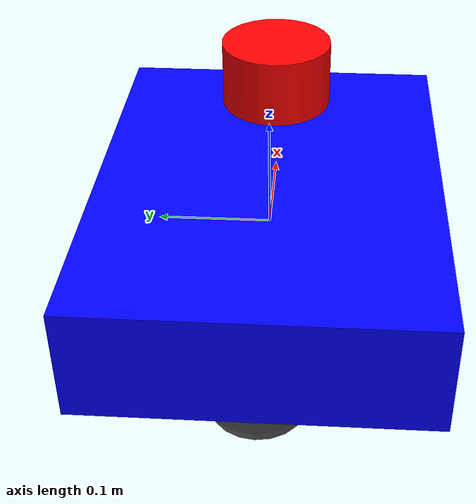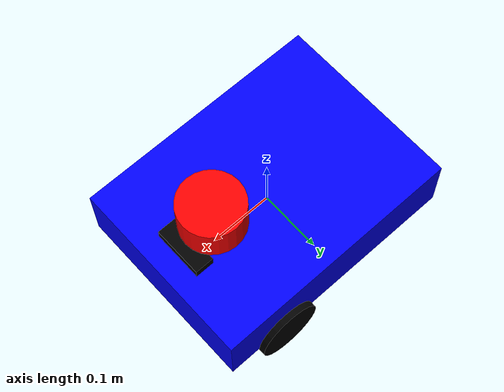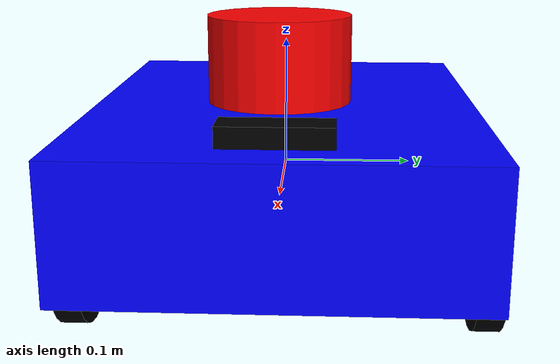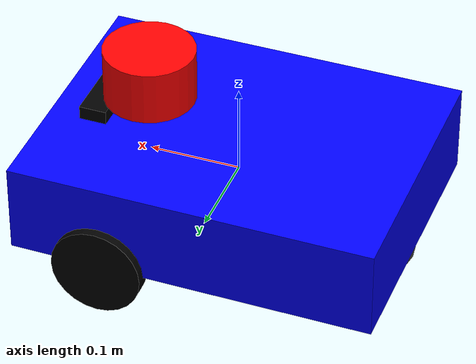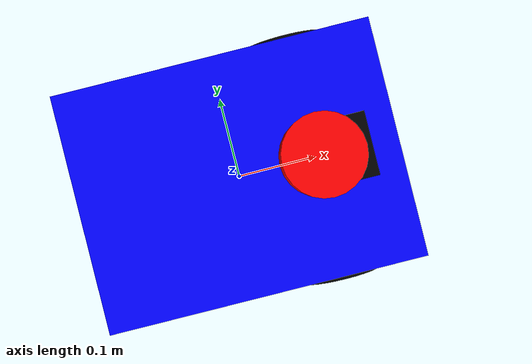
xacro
<?xml version="1.0"?>
<robot xmlns:xacro="http://www.ros.org/wiki/xacro" name="diff_drive_robot">
    <!-- First, we properly declare our arguments -->
    <xacro:arg name="namespace" default="robot1"/>
    <xacro:arg name="x" default="0"/>
    <xacro:arg name="y" default="0"/>
    <xacro:arg name="z" default="0"/>

    <!-- We need to create properties from our arguments to use them in includes -->
    <xacro:property name="robot_namespace" value="$(arg namespace)"/>
    <xacro:property name="robot_x" value="$(arg x)"/>
    <xacro:property name="robot_y" value="$(arg y)"/>
    <xacro:property name="robot_z" value="$(arg z)"/>

    <!-- Include Modules -->
    <xacro:include filename="base.xacro"/>
    <xacro:include filename="wheels.xacro"/>
    <xacro:include filename="lidar.xacro"/>
    <xacro:include filename="gazebo_plugins.xacro"/>

    <!-- Now we use our properties when calling the macros -->
    <xacro:base namespace="${robot_namespace}" x="${robot_x}" y="${robot_y}" z="${robot_z}"/>
    <xacro:wheels namespace="${robot_namespace}"/>
    <xacro:lidar namespace="${robot_namespace}"/>
    <xacro:camera namespace="${robot_namespace}"/>
    <xacro:gazebo_plugins namespace="${robot_namespace}"/>
</robot>

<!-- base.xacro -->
<robot xmlns:xacro="http://www.ros.org/wiki/xacro">
    <!-- Define materials first -->
    <material name="blue">
        <color rgba="0 0 1 1"/>
    </material>
    <material name="red">
        <color rgba="1 0 0 1"/>
    </material>
    <material name="black">
        <color rgba="0 0 0 1"/>
    </material>
    <material name="gray">
        <color rgba="0.33 0.33 0.33 1"/>
    </material>

    <!-- Base macro definition -->
    <xacro:macro name="base" params="namespace x y z">
        <!-- Odom Link -->
        <link name="${namespace}/odom"/>

        <!-- Base Link -->
        <link name="${namespace}/base_link">
            <visual>
                <geometry>
                    <box size="0.4 0.3 0.1"/>
                </geometry>
                <material name="blue"/>
            </visual>
            <collision>
                <geometry>
                    <box size="0.4 0.3 0.1"/>
                </geometry>
            </collision>
            <inertial>
                <mass value="2.0"/>
                <origin xyz="0 0 0"/>
                <inertia ixx="0.01" ixy="0.0" ixz="0.0"
                         iyy="0.01" iyz="0.0" izz="0.02"/>
            </inertial>
        </link>

        <!-- Odom Joint -->
        <joint name="${namespace}/odom_joint" type="fixed">
            <parent link="${namespace}/odom"/>
            <child link="${namespace}/base_link"/>
            <origin xyz="${x} ${y} ${z}" rpy="0 0 0"/>
        </joint>

    </xacro:macro>
</robot>

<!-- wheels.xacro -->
<robot xmlns:xacro="http://www.ros.org/wiki/xacro">

    <xacro:macro name="wheels" params="namespace">
        <!-- Left Wheel -->
        <link name="${namespace}/left_wheel">
            <visual>
                <geometry>
                    <cylinder length="0.02" radius="0.05"/>
                </geometry>
                <material name="black"/>
            </visual>
            <collision>
                <geometry>
                    <cylinder length="0.02" radius="0.05"/>
                </geometry>
            </collision>
            <inertial>
                <mass value="0.5"/>
                <origin xyz="0 0 0"/>
                <inertia ixx="0.001" ixy="0.0" ixz="0.0" iyy="0.001" iyz="0.0" izz="0.001"/>
            </inertial>
        </link>

        <joint name="${namespace}/left_wheel_joint" type="continuous">
            <parent link="${namespace}/base_link"/>
            <child link="${namespace}/left_wheel"/>
            <origin xyz="0.10 0.15 -0.05" rpy="-1.5707 0 0"/>
            <axis xyz="0 0 1"/>
        </joint>

        <!-- Right Wheel -->
        <link name="${namespace}/right_wheel">
            <visual>
                <geometry>
                    <cylinder length="0.02" radius="0.05"/>
                </geometry>
                <material name="black"/>
            </visual>
            <collision>
                <geometry>
                    <cylinder length="0.02" radius="0.05"/>
                </geometry>
            </collision>
            <inertial>
                <mass value="0.5"/>
                <origin xyz="0 0 0"/>
                <inertia ixx="0.001" ixy="0.0" ixz="0.0" iyy="0.001" iyz="0.0" izz="0.001"/>
            </inertial>
        </link>

        <joint name="${namespace}/right_wheel_joint" type="continuous">
            <parent link="${namespace}/base_link"/>
            <child link="${namespace}/right_wheel"/>
            <origin xyz="0.10 -0.15 -0.05" rpy="-1.5707 0 0"/>
            <axis xyz="0 0 1"/>
        </joint>

        <!-- Caster Wheel -->
        <link name="${namespace}/caster_wheel">
            <visual>
                <geometry>
                    <sphere radius="0.05"/>
                </geometry>
                <material name="gray"/>
            </visual>
            <collision>
                <geometry>
                    <sphere radius="0.05"/>
                </geometry>
            </collision>
            <inertial>
                <mass value="0.1"/>
                <origin xyz="0 0 0"/>
                <inertia ixx="0.0001" ixy="0.0" ixz="0.0" iyy="0.0001" iyz="0.0" izz="0.0001"/>
            </inertial>
        </link>

        <joint name="${namespace}/caster_wheel_joint" type="fixed">
            <parent link="${namespace}/base_link"/>
            <child link="${namespace}/caster_wheel"/>
            <origin xyz="-0.15 0.0 -0.05" rpy="0 0 0"/>
        </joint>
    </xacro:macro>

</robot>

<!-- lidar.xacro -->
<robot xmlns:xacro="http://www.ros.org/wiki/xacro">

    <xacro:macro name="lidar" params="namespace">
        <link name="${namespace}/lazer_frame">
            <visual>
                <geometry>
                    <cylinder radius="0.05" length="0.06"/>
                </geometry>
                <material name="red"/>
            </visual>
            <collision>
                <geometry>
                    <cylinder radius="0.15" length="0.30"/>
                </geometry>
            </collision>
            <inertial>
                <mass value="1"/>
                <origin xyz="0 0 0"/>
                <inertia ixx="0.002858" ixy="0" ixz="0"
                        iyy="0.002858" iyz="0"
                        izz="0.005625"/>
            </inertial>
        </link>
        <joint name="${namespace}/lazer_joint" type="fixed">
            <parent link="${namespace}/base_link"/>
            <child link="${namespace}/lazer_frame"/>
            <origin xyz="0.10 0 0.10" rpy="0 0 0"/>
        </joint>

        <gazebo reference="${namespace}/lazer_frame">
            <sensor name="${namespace}/lazer" type="ray">
                <pose>0 0 0 0 0 0</pose>
                <visualize>true</visualize>
                <update_rate>10</update_rate>
                <ray>
                    <scan>
                        <horizontal>
                            <samples>180</samples>
                            <resolution>2</resolution>
                            <min_angle>-3.14</min_angle>
                            <max_angle>3.14</max_angle>
                        </horizontal>
                    </scan>
                    <range>
                        <min>0.3</min>
                        <max>12</max>
                        <resolution>1</resolution>
                    </range>
                </ray>
                <plugin name="${namespace}_laser_controller" filename="libgazebo_ros_ray_sensor.so">
                    <ros>
                        <remapping>~/out:=/${namespace}/scan</remapping>
                    </ros>
                    <output_type>sensor_msgs/LaserScan</output_type>
                    <frame_name>${namespace}/lazer_frame</frame_name>
                </plugin>
            </sensor>
        </gazebo>
    </xacro:macro>

	<xacro:macro name="camera" params="namespace">
        <!-- Camera Link -->
        <link name="${namespace}/camera_frame">
            <visual>
                <geometry>
                    <box size="0.03 0.08 0.03"/>
                </geometry>
                <material name="black"/>
            </visual>
            <collision>
                <geometry>
                    <box size="0.03 0.08 0.03"/>
                </geometry>
            </collision>
            <inertial>
                <mass value="0.1"/>
                <origin xyz="0 0 0"/>
                <inertia ixx="0.000083" ixy="0" ixz="0"
                         iyy="0.000083" iyz="0"
                         izz="0.000083"/>
            </inertial>
        </link>

        <!-- Camera Joint -->
        <joint name="${namespace}/camera_joint" type="fixed">
            <parent link="${namespace}/base_link"/>
            <child link="${namespace}/camera_frame"/>
            <origin xyz="0.15 0 0.05" rpy="0 0 0"/>
        </joint>

        <!-- Gazebo Plugin Configuration -->
        <gazebo reference="${namespace}/camera_frame">
            <sensor name="${namespace}_camera" type="camera">
                <update_rate>30.0</update_rate>
                <camera>
                    <horizontal_fov>1.3962634</horizontal_fov>
                    <image>
                        <width>640</width>
                        <height>480</height>
                        <format>R8G8B8</format>
                    </image>
                    <clip>
                        <near>0.02</near>
                        <far>300</far>
                    </clip>
                </camera>
                <plugin name="${namespace}_camera_controller" filename="libgazebo_ros_camera.so">
                    <ros>
                        <remapping>image_raw:=/${namespace}/image_raw</remapping>
                        <remapping>camera_info:=/${namespace}/camera_info</remapping>
                    </ros>
                    <frame_name>${namespace}/camera_frame</frame_name>
                </plugin>
            </sensor>
        </gazebo>
    </xacro:macro>

</robot>
